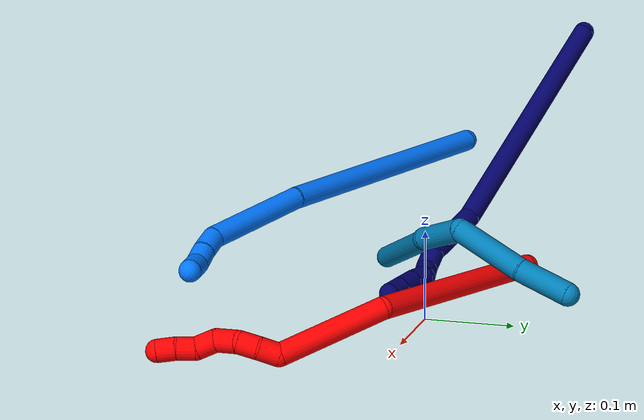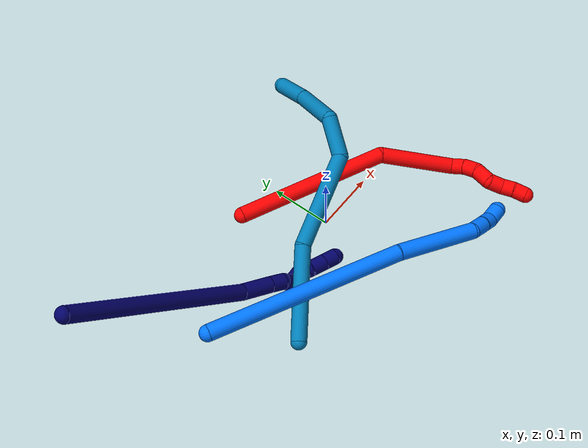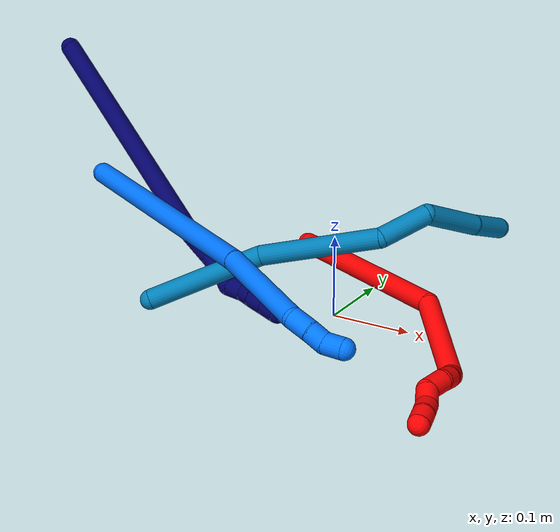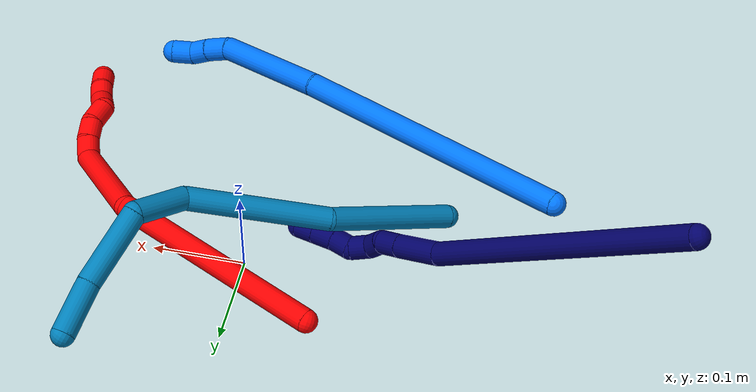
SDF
<sdf version="1.7">
 <world name="default">
  <model name="2">
   <static>0</static>
   <link name="2">
    <collision name="collision-cylinder-e_1_1_4">
     <pose>0.045699 -0.111108 0.02016 1.3913 0.38455 0.32225</pose>
     <geometry><cylinder><radius>0.0125</radius><length>0.243638</length></cylinder></geometry>
     <surface>
      <friction><ode><mu>1.16</mu><mu2>1.16</mu2><slip1>0</slip1><slip2>0</slip2></ode></friction>
      <contact><ode><kp>1e+06</kp><kd>1</kd><max_vel>0</max_vel><min_depth>0.001</min_depth></ode></contact>
     </surface>
    </collision>
    <visual name="visual-cylinder-e_1_1_4">
     <pose>0.045699 -0.111108 0.02016 1.3913 0.38455 0.32225</pose>
     <geometry><cylinder><radius>0.0125</radius><length>0.243638</length></cylinder></geometry>
     <material><ambient>1 0 0 1</ambient></material>
    </visual>
    <collision name="collision-cylinder-e_2_4_5">
     <pose>0.082321 -0.280806 0.055691 1.31424 -0.148756 -0.114852</pose>
     <geometry><cylinder><radius>0.0125</radius><length>0.122499</length></cylinder></geometry>
     <surface>
      <friction><ode><mu>1.16</mu><mu2>1.16</mu2><slip1>0</slip1><slip2>0</slip2></ode></friction>
      <contact><ode><kp>1e+06</kp><kd>1</kd><max_vel>0</max_vel><min_depth>0.001</min_depth></ode></contact>
     </surface>
    </collision>
    <visual name="visual-cylinder-e_2_4_5">
     <pose>0.082321 -0.280806 0.055691 1.31424 -0.148756 -0.114852</pose>
     <geometry><cylinder><radius>0.0125</radius><length>0.122499</length></cylinder></geometry>
     <material><ambient>1 0 0 1</ambient></material>
    </visual>
    <collision name="collision-cylinder-e_3_5_6">
     <pose>0.073512 -0.345645 0.080512 0.584186 0.023677 0.00712</pose>
     <geometry><cylinder><radius>0.0125</radius><length>0.022665</length></cylinder></geometry>
     <surface>
      <friction><ode><mu>1.16</mu><mu2>1.16</mu2><slip1>0</slip1><slip2>0</slip2></ode></friction>
      <contact><ode><kp>1e+06</kp><kd>1</kd><max_vel>0</max_vel><min_depth>0.001</min_depth></ode></contact>
     </surface>
    </collision>
    <visual name="visual-cylinder-e_3_5_6">
     <pose>0.073512 -0.345645 0.080512 0.584186 0.023677 0.00712</pose>
     <geometry><cylinder><radius>0.0125</radius><length>0.022665</length></cylinder></geometry>
     <material><ambient>1 0 0 1</ambient></material>
    </visual>
    <collision name="collision-cylinder-e_4_6_7">
     <pose>0.071655 -0.356879 0.099362 0.487676 -0.197099 -0.049185</pose>
     <geometry><cylinder><radius>0.0125</radius><length>0.021702</length></cylinder></geometry>
     <surface>
      <friction><ode><mu>1.16</mu><mu2>1.16</mu2><slip1>0</slip1><slip2>0</slip2></ode></friction>
      <contact><ode><kp>1e+06</kp><kd>1</kd><max_vel>0</max_vel><min_depth>0.001</min_depth></ode></contact>
     </surface>
    </collision>
    <visual name="visual-cylinder-e_4_6_7">
     <pose>0.071655 -0.356879 0.099362 0.487676 -0.197099 -0.049185</pose>
     <geometry><cylinder><radius>0.0125</radius><length>0.021702</length></cylinder></geometry>
     <material><ambient>1 0 0 1</ambient></material>
    </visual>
    <collision name="collision-cylinder-e_5_7_8">
     <pose>0.062147 -0.366966 0.118473 0.483702 -0.592476 -0.150299</pose>
     <geometry><cylinder><radius>0.0125</radius><length>0.026444</length></cylinder></geometry>
     <surface>
      <friction><ode><mu>1.16</mu><mu2>1.16</mu2><slip1>0</slip1><slip2>0</slip2></ode></friction>
      <contact><ode><kp>1e+06</kp><kd>1</kd><max_vel>0</max_vel><min_depth>0.001</min_depth></ode></contact>
     </surface>
    </collision>
    <visual name="visual-cylinder-e_5_7_8">
     <pose>0.062147 -0.366966 0.118473 0.483702 -0.592476 -0.150299</pose>
     <geometry><cylinder><radius>0.0125</radius><length>0.026444</length></cylinder></geometry>
     <material><ambient>1 0 0 1</ambient></material>
    </visual>
    <collision name="collision-cylinder-e_6_8_9">
     <pose>0.050661 -0.381965 0.132041 1.19913 -0.36855 -0.253428</pose>
     <geometry><cylinder><radius>0.0125</radius><length>0.022777</length></cylinder></geometry>
     <surface>
      <friction><ode><mu>1.16</mu><mu2>1.16</mu2><slip1>0</slip1><slip2>0</slip2></ode></friction>
      <contact><ode><kp>1e+06</kp><kd>1</kd><max_vel>0</max_vel><min_depth>0.001</min_depth></ode></contact>
     </surface>
    </collision>
    <visual name="visual-cylinder-e_6_8_9">
     <pose>0.050661 -0.381965 0.132041 1.19913 -0.36855 -0.253428</pose>
     <geometry><cylinder><radius>0.0125</radius><length>0.022777</length></cylinder></geometry>
     <material><ambient>1 0 0 1</ambient></material>
    </visual>
    <collision name="collision-cylinder-e_7_9_10">
     <pose>0.044453 -0.398971 0.142665 0.810038 -0.211349 -0.090886</pose>
     <geometry><cylinder><radius>0.0125</radius><length>0.020071</length></cylinder></geometry>
     <surface>
      <friction><ode><mu>1.16</mu><mu2>1.16</mu2><slip1>0</slip1><slip2>0</slip2></ode></friction>
      <contact><ode><kp>1e+06</kp><kd>1</kd><max_vel>0</max_vel><min_depth>0.001</min_depth></ode></contact>
     </surface>
    </collision>
    <visual name="visual-cylinder-e_7_9_10">
     <pose>0.044453 -0.398971 0.142665 0.810038 -0.211349 -0.090886</pose>
     <geometry><cylinder><radius>0.0125</radius><length>0.020071</length></cylinder></geometry>
     <material><ambient>1 0 0 1</ambient></material>
    </visual>
    <collision name="collision-cylinder-e_8_10_2">
     <pose>0.038594 -0.413293 0.155424 0.877543 -0.380634 -0.180322</pose>
     <geometry><cylinder><radius>0.0125</radius><length>0.020205</length></cylinder></geometry>
     <surface>
      <friction><ode><mu>1.16</mu><mu2>1.16</mu2><slip1>0</slip1><slip2>0</slip2></ode></friction>
      <contact><ode><kp>1e+06</kp><kd>1</kd><max_vel>0</max_vel><min_depth>0.001</min_depth></ode></contact>
     </surface>
    </collision>
    <visual name="visual-cylinder-e_8_10_2">
     <pose>0.038594 -0.413293 0.155424 0.877543 -0.380634 -0.180322</pose>
     <geometry><cylinder><radius>0.0125</radius><length>0.020205</length></cylinder></geometry>
     <material><ambient>1 0 0 1</ambient></material>
    </visual>
    <collision name="collision-sphere-2">
     <pose>0.034841 -0.420507 0.161418 0 -0 0</pose>
     <geometry><sphere><radius>0.0125</radius></sphere></geometry>
     <surface>
      <friction><ode><mu>1.16</mu><mu2>1.16</mu2><slip1>0</slip1><slip2>0</slip2></ode></friction>
      <contact><ode><kp>1e+06</kp><kd>1</kd><max_vel>0</max_vel><min_depth>0.001</min_depth></ode></contact>
     </surface>
    </collision>
    <visual name="visual-sphere-2">
     <pose>0.034841 -0.420507 0.161418 0 -0 0</pose>
     <geometry><sphere><radius>0.0125</radius></sphere></geometry>
     <material><ambient>1 0 0 1</ambient></material>
    </visual>
    <collision name="collision-sphere-10">
     <pose>0.042347 -0.406078 0.14943 0 -0 0</pose>
     <geometry><sphere><radius>0.0125</radius></sphere></geometry>
     <surface>
      <friction><ode><mu>1.16</mu><mu2>1.16</mu2><slip1>0</slip1><slip2>0</slip2></ode></friction>
      <contact><ode><kp>1e+06</kp><kd>1</kd><max_vel>0</max_vel><min_depth>0.001</min_depth></ode></contact>
     </surface>
    </collision>
    <visual name="visual-sphere-10">
     <pose>0.042347 -0.406078 0.14943 0 -0 0</pose>
     <geometry><sphere><radius>0.0125</radius></sphere></geometry>
     <material><ambient>1 0 0 1</ambient></material>
    </visual>
    <collision name="collision-sphere-9">
     <pose>0.046558 -0.391864 0.135899 0 -0 0</pose>
     <geometry><sphere><radius>0.0125</radius></sphere></geometry>
     <surface>
      <friction><ode><mu>1.16</mu><mu2>1.16</mu2><slip1>0</slip1><slip2>0</slip2></ode></friction>
      <contact><ode><kp>1e+06</kp><kd>1</kd><max_vel>0</max_vel><min_depth>0.001</min_depth></ode></contact>
     </surface>
    </collision>
    <visual name="visual-sphere-9">
     <pose>0.046558 -0.391864 0.135899 0 -0 0</pose>
     <geometry><sphere><radius>0.0125</radius></sphere></geometry>
     <material><ambient>1 0 0 1</ambient></material>
    </visual>
    <collision name="collision-sphere-4">
     <pose>0.091399 -0.222216 0.040321 0 -0 0</pose>
     <geometry><sphere><radius>0.0125</radius></sphere></geometry>
     <surface>
      <friction><ode><mu>1.16</mu><mu2>1.16</mu2><slip1>0</slip1><slip2>0</slip2></ode></friction>
      <contact><ode><kp>1e+06</kp><kd>1</kd><max_vel>0</max_vel><min_depth>0.001</min_depth></ode></contact>
     </surface>
    </collision>
    <visual name="visual-sphere-4">
     <pose>0.091399 -0.222216 0.040321 0 -0 0</pose>
     <geometry><sphere><radius>0.0125</radius></sphere></geometry>
     <material><ambient>1 0 0 1</ambient></material>
    </visual>
    <collision name="collision-sphere-1">
     <geometry><sphere><radius>0.0125</radius></sphere></geometry>
     <surface>
      <friction><ode><mu>1.16</mu><mu2>1.16</mu2><slip1>0</slip1><slip2>0</slip2></ode></friction>
      <contact><ode><kp>1e+06</kp><kd>1</kd><max_vel>0</max_vel><min_depth>0.001</min_depth></ode></contact>
     </surface>
    </collision>
    <visual name="visual-sphere-1">
     <geometry><sphere><radius>0.0125</radius></sphere></geometry>
     <material><ambient>1 0 0 1</ambient></material>
    </visual>
    <collision name="collision-sphere-8">
     <pose>0.054764 -0.372067 0.128183 0 -0 0</pose>
     <geometry><sphere><radius>0.0125</radius></sphere></geometry>
     <surface>
      <friction><ode><mu>1.16</mu><mu2>1.16</mu2><slip1>0</slip1><slip2>0</slip2></ode></friction>
      <contact><ode><kp>1e+06</kp><kd>1</kd><max_vel>0</max_vel><min_depth>0.001</min_depth></ode></contact>
     </surface>
    </collision>
    <visual name="visual-sphere-8">
     <pose>0.054764 -0.372067 0.128183 0 -0 0</pose>
     <geometry><sphere><radius>0.0125</radius></sphere></geometry>
     <material><ambient>1 0 0 1</ambient></material>
    </visual>
    <collision name="collision-sphere-5">
     <pose>0.073243 -0.339397 0.071061 0 -0 0</pose>
     <geometry><sphere><radius>0.0125</radius></sphere></geometry>
     <surface>
      <friction><ode><mu>1.16</mu><mu2>1.16</mu2><slip1>0</slip1><slip2>0</slip2></ode></friction>
      <contact><ode><kp>1e+06</kp><kd>1</kd><max_vel>0</max_vel><min_depth>0.001</min_depth></ode></contact>
     </surface>
    </collision>
    <visual name="visual-sphere-5">
     <pose>0.073243 -0.339397 0.071061 0 -0 0</pose>
     <geometry><sphere><radius>0.0125</radius></sphere></geometry>
     <material><ambient>1 0 0 1</ambient></material>
    </visual>
    <collision name="collision-sphere-6">
     <pose>0.07378 -0.351893 0.089962 0 -0 0</pose>
     <geometry><sphere><radius>0.0125</radius></sphere></geometry>
     <surface>
      <friction><ode><mu>1.16</mu><mu2>1.16</mu2><slip1>0</slip1><slip2>0</slip2></ode></friction>
      <contact><ode><kp>1e+06</kp><kd>1</kd><max_vel>0</max_vel><min_depth>0.001</min_depth></ode></contact>
     </surface>
    </collision>
    <visual name="visual-sphere-6">
     <pose>0.07378 -0.351893 0.089962 0 -0 0</pose>
     <geometry><sphere><radius>0.0125</radius></sphere></geometry>
     <material><ambient>1 0 0 1</ambient></material>
    </visual>
    <collision name="collision-sphere-7">
     <pose>0.06953 -0.361865 0.108763 0 -0 0</pose>
     <geometry><sphere><radius>0.0125</radius></sphere></geometry>
     <surface>
      <friction><ode><mu>1.16</mu><mu2>1.16</mu2><slip1>0</slip1><slip2>0</slip2></ode></friction>
      <contact><ode><kp>1e+06</kp><kd>1</kd><max_vel>0</max_vel><min_depth>0.001</min_depth></ode></contact>
     </surface>
    </collision>
    <visual name="visual-sphere-7">
     <pose>0.06953 -0.361865 0.108763 0 -0 0</pose>
     <geometry><sphere><radius>0.0125</radius></sphere></geometry>
     <material><ambient>1 0 0 1</ambient></material>
    </visual>
    <inertial>
     <pose>0.057818 -0.22362 0.055718 0 -0 0</pose>
     <mass>0.5</mass>
     <inertia>
      <ixx>0.001574</ixx>
      <ixy>0</ixy>
      <ixz>0</ixz>
      <iyy>0.000703</iyy>
      <iyz>0</iyz>
      <izz>0.000849</izz>
     </inertia>
    </inertial>
   </link>
   <pose>-0.090503 0.093541 0.044495 0.535367 -0.742898 0.61382</pose>
  </model>
  <model name="7">
   <static>0</static>
   <link name="7">
    <collision name="collision-cylinder-e_1_1_4">
     <pose>0.009944 -0.013615 -0.157216 3.0552 0.062929 1.25886</pose>
     <geometry><cylinder><radius>0.0125</radius><length>0.316236</length></cylinder></geometry>
     <surface>
      <friction><ode><mu>1.16</mu><mu2>1.16</mu2><slip1>0</slip1><slip2>0</slip2></ode></friction>
      <contact><ode><kp>1e+06</kp><kd>1</kd><max_vel>0</max_vel><min_depth>0.001</min_depth></ode></contact>
     </surface>
    </collision>
    <visual name="visual-cylinder-e_1_1_4">
     <pose>0.009944 -0.013615 -0.157216 3.0552 0.062929 1.25886</pose>
     <geometry><cylinder><radius>0.0125</radius><length>0.316236</length></cylinder></geometry>
     <material><ambient>0.003922 0 0.403922 1</ambient></material>
    </visual>
    <collision name="collision-cylinder-e_2_4_5">
     <pose>0.027302 -0.030666 -0.337949 2.99652 0.302434 2.25169</pose>
     <geometry><cylinder><radius>0.0125</radius><length>0.04979</length></cylinder></geometry>
     <surface>
      <friction><ode><mu>1.16</mu><mu2>1.16</mu2><slip1>0</slip1><slip2>0</slip2></ode></friction>
      <contact><ode><kp>1e+06</kp><kd>1</kd><max_vel>0</max_vel><min_depth>0.001</min_depth></ode></contact>
     </surface>
    </collision>
    <visual name="visual-cylinder-e_2_4_5">
     <pose>0.027302 -0.030666 -0.337949 2.99652 0.302434 2.25169</pose>
     <geometry><cylinder><radius>0.0125</radius><length>0.04979</length></cylinder></geometry>
     <material><ambient>0.003922 0 0.403922 1</ambient></material>
    </visual>
    <collision name="collision-cylinder-e_3_5_6">
     <pose>0.038352 -0.036192 -0.372983 2.96209 0.301043 2.07055</pose>
     <geometry><cylinder><radius>0.0125</radius><length>0.024516</length></cylinder></geometry>
     <surface>
      <friction><ode><mu>1.16</mu><mu2>1.16</mu2><slip1>0</slip1><slip2>0</slip2></ode></friction>
      <contact><ode><kp>1e+06</kp><kd>1</kd><max_vel>0</max_vel><min_depth>0.001</min_depth></ode></contact>
     </surface>
    </collision>
    <visual name="visual-cylinder-e_3_5_6">
     <pose>0.038352 -0.036192 -0.372983 2.96209 0.301043 2.07055</pose>
     <geometry><cylinder><radius>0.0125</radius><length>0.024516</length></cylinder></geometry>
     <material><ambient>0.003922 0 0.403922 1</ambient></material>
    </visual>
    <collision name="collision-cylinder-e_4_6_7">
     <pose>0.040164 -0.039127 -0.395177 3.06265 -0.168531 -2.26693</pose>
     <geometry><cylinder><radius>0.0125</radius><length>0.021726</length></cylinder></geometry>
     <surface>
      <friction><ode><mu>1.16</mu><mu2>1.16</mu2><slip1>0</slip1><slip2>0</slip2></ode></friction>
      <contact><ode><kp>1e+06</kp><kd>1</kd><max_vel>0</max_vel><min_depth>0.001</min_depth></ode></contact>
     </surface>
    </collision>
    <visual name="visual-cylinder-e_4_6_7">
     <pose>0.040164 -0.039127 -0.395177 3.06265 -0.168531 -2.26693</pose>
     <geometry><cylinder><radius>0.0125</radius><length>0.021726</length></cylinder></geometry>
     <material><ambient>0.003922 0 0.403922 1</ambient></material>
    </visual>
    <collision name="collision-cylinder-e_5_7_8">
     <pose>0.042891 -0.036095 -0.414868 -2.73549 0.434074 -1.63935</pose>
     <geometry><cylinder><radius>0.0125</radius><length>0.021633</length></cylinder></geometry>
     <surface>
      <friction><ode><mu>1.16</mu><mu2>1.16</mu2><slip1>0</slip1><slip2>0</slip2></ode></friction>
      <contact><ode><kp>1e+06</kp><kd>1</kd><max_vel>0</max_vel><min_depth>0.001</min_depth></ode></contact>
     </surface>
    </collision>
    <visual name="visual-cylinder-e_5_7_8">
     <pose>0.042891 -0.036095 -0.414868 -2.73549 0.434074 -1.63935</pose>
     <geometry><cylinder><radius>0.0125</radius><length>0.021633</length></cylinder></geometry>
     <material><ambient>0.003922 0 0.403922 1</ambient></material>
    </visual>
    <collision name="collision-cylinder-e_6_8_9">
     <pose>0.053499 -0.034616 -0.432107 2.85787 0.61557 2.29708</pose>
     <geometry><cylinder><radius>0.0125</radius><length>0.020983</length></cylinder></geometry>
     <surface>
      <friction><ode><mu>1.16</mu><mu2>1.16</mu2><slip1>0</slip1><slip2>0</slip2></ode></friction>
      <contact><ode><kp>1e+06</kp><kd>1</kd><max_vel>0</max_vel><min_depth>0.001</min_depth></ode></contact>
     </surface>
    </collision>
    <visual name="visual-cylinder-e_6_8_9">
     <pose>0.053499 -0.034616 -0.432107 2.85787 0.61557 2.29708</pose>
     <geometry><cylinder><radius>0.0125</radius><length>0.020983</length></cylinder></geometry>
     <material><ambient>0.003922 0 0.403922 1</ambient></material>
    </visual>
    <collision name="collision-cylinder-e_7_9_10">
     <pose>0.066141 -0.038222 -0.450336 3.02144 0.57869 2.74288</pose>
     <geometry><cylinder><radius>0.0125</radius><length>0.024078</length></cylinder></geometry>
     <surface>
      <friction><ode><mu>1.16</mu><mu2>1.16</mu2><slip1>0</slip1><slip2>0</slip2></ode></friction>
      <contact><ode><kp>1e+06</kp><kd>1</kd><max_vel>0</max_vel><min_depth>0.001</min_depth></ode></contact>
     </surface>
    </collision>
    <visual name="visual-cylinder-e_7_9_10">
     <pose>0.066141 -0.038222 -0.450336 3.02144 0.57869 2.74288</pose>
     <geometry><cylinder><radius>0.0125</radius><length>0.024078</length></cylinder></geometry>
     <material><ambient>0.003922 0 0.403922 1</ambient></material>
    </visual>
    <collision name="collision-cylinder-e_8_10_2">
     <pose>0.078443 -0.040525 -0.469103 3.01717 0.574685 2.72611</pose>
     <geometry><cylinder><radius>0.0125</radius><length>0.021038</length></cylinder></geometry>
     <surface>
      <friction><ode><mu>1.16</mu><mu2>1.16</mu2><slip1>0</slip1><slip2>0</slip2></ode></friction>
      <contact><ode><kp>1e+06</kp><kd>1</kd><max_vel>0</max_vel><min_depth>0.001</min_depth></ode></contact>
     </surface>
    </collision>
    <visual name="visual-cylinder-e_8_10_2">
     <pose>0.078443 -0.040525 -0.469103 3.01717 0.574685 2.72611</pose>
     <geometry><cylinder><radius>0.0125</radius><length>0.021038</length></cylinder></geometry>
     <material><ambient>0.003922 0 0.403922 1</ambient></material>
    </visual>
    <collision name="collision-sphere-2">
     <pose>0.084161 -0.041621 -0.477864 0 -0 0</pose>
     <geometry><sphere><radius>0.0125</radius></sphere></geometry>
     <surface>
      <friction><ode><mu>1.16</mu><mu2>1.16</mu2><slip1>0</slip1><slip2>0</slip2></ode></friction>
      <contact><ode><kp>1e+06</kp><kd>1</kd><max_vel>0</max_vel><min_depth>0.001</min_depth></ode></contact>
     </surface>
    </collision>
    <visual name="visual-sphere-2">
     <pose>0.084161 -0.041621 -0.477864 0 -0 0</pose>
     <geometry><sphere><radius>0.0125</radius></sphere></geometry>
     <material><ambient>0.003922 0 0.403922 1</ambient></material>
    </visual>
    <collision name="collision-sphere-10">
     <pose>0.072725 -0.03943 -0.460342 0 -0 0</pose>
     <geometry><sphere><radius>0.0125</radius></sphere></geometry>
     <surface>
      <friction><ode><mu>1.16</mu><mu2>1.16</mu2><slip1>0</slip1><slip2>0</slip2></ode></friction>
      <contact><ode><kp>1e+06</kp><kd>1</kd><max_vel>0</max_vel><min_depth>0.001</min_depth></ode></contact>
     </surface>
    </collision>
    <visual name="visual-sphere-10">
     <pose>0.072725 -0.03943 -0.460342 0 -0 0</pose>
     <geometry><sphere><radius>0.0125</radius></sphere></geometry>
     <material><ambient>0.003922 0 0.403922 1</ambient></material>
    </visual>
    <collision name="collision-sphere-9">
     <pose>0.059557 -0.037014 -0.44033 0 -0 0</pose>
     <geometry><sphere><radius>0.0125</radius></sphere></geometry>
     <surface>
      <friction><ode><mu>1.16</mu><mu2>1.16</mu2><slip1>0</slip1><slip2>0</slip2></ode></friction>
      <contact><ode><kp>1e+06</kp><kd>1</kd><max_vel>0</max_vel><min_depth>0.001</min_depth></ode></contact>
     </surface>
    </collision>
    <visual name="visual-sphere-9">
     <pose>0.059557 -0.037014 -0.44033 0 -0 0</pose>
     <geometry><sphere><radius>0.0125</radius></sphere></geometry>
     <material><ambient>0.003922 0 0.403922 1</ambient></material>
    </visual>
    <collision name="collision-sphere-4">
     <pose>0.019887 -0.027231 -0.314433 0 -0 0</pose>
     <geometry><sphere><radius>0.0125</radius></sphere></geometry>
     <surface>
      <friction><ode><mu>1.16</mu><mu2>1.16</mu2><slip1>0</slip1><slip2>0</slip2></ode></friction>
      <contact><ode><kp>1e+06</kp><kd>1</kd><max_vel>0</max_vel><min_depth>0.001</min_depth></ode></contact>
     </surface>
    </collision>
    <visual name="visual-sphere-4">
     <pose>0.019887 -0.027231 -0.314433 0 -0 0</pose>
     <geometry><sphere><radius>0.0125</radius></sphere></geometry>
     <material><ambient>0.003922 0 0.403922 1</ambient></material>
    </visual>
    <collision name="collision-sphere-1">
     <geometry><sphere><radius>0.0125</radius></sphere></geometry>
     <surface>
      <friction><ode><mu>1.16</mu><mu2>1.16</mu2><slip1>0</slip1><slip2>0</slip2></ode></friction>
      <contact><ode><kp>1e+06</kp><kd>1</kd><max_vel>0</max_vel><min_depth>0.001</min_depth></ode></contact>
     </surface>
    </collision>
    <visual name="visual-sphere-1">
     <geometry><sphere><radius>0.0125</radius></sphere></geometry>
     <material><ambient>0.003922 0 0.403922 1</ambient></material>
    </visual>
    <collision name="collision-sphere-8">
     <pose>0.047441 -0.032218 -0.423883 0 -0 0</pose>
     <geometry><sphere><radius>0.0125</radius></sphere></geometry>
     <surface>
      <friction><ode><mu>1.16</mu><mu2>1.16</mu2><slip1>0</slip1><slip2>0</slip2></ode></friction>
      <contact><ode><kp>1e+06</kp><kd>1</kd><max_vel>0</max_vel><min_depth>0.001</min_depth></ode></contact>
     </surface>
    </collision>
    <visual name="visual-sphere-8">
     <pose>0.047441 -0.032218 -0.423883 0 -0 0</pose>
     <geometry><sphere><radius>0.0125</radius></sphere></geometry>
     <material><ambient>0.003922 0 0.403922 1</ambient></material>
    </visual>
    <collision name="collision-sphere-5">
     <pose>0.034717 -0.034102 -0.361464 0 -0 0</pose>
     <geometry><sphere><radius>0.0125</radius></sphere></geometry>
     <surface>
      <friction><ode><mu>1.16</mu><mu2>1.16</mu2><slip1>0</slip1><slip2>0</slip2></ode></friction>
      <contact><ode><kp>1e+06</kp><kd>1</kd><max_vel>0</max_vel><min_depth>0.001</min_depth></ode></contact>
     </surface>
    </collision>
    <visual name="visual-sphere-5">
     <pose>0.034717 -0.034102 -0.361464 0 -0 0</pose>
     <geometry><sphere><radius>0.0125</radius></sphere></geometry>
     <material><ambient>0.003922 0 0.403922 1</ambient></material>
    </visual>
    <collision name="collision-sphere-6">
     <pose>0.041987 -0.038282 -0.384501 0 -0 0</pose>
     <geometry><sphere><radius>0.0125</radius></sphere></geometry>
     <surface>
      <friction><ode><mu>1.16</mu><mu2>1.16</mu2><slip1>0</slip1><slip2>0</slip2></ode></friction>
      <contact><ode><kp>1e+06</kp><kd>1</kd><max_vel>0</max_vel><min_depth>0.001</min_depth></ode></contact>
     </surface>
    </collision>
    <visual name="visual-sphere-6">
     <pose>0.041987 -0.038282 -0.384501 0 -0 0</pose>
     <geometry><sphere><radius>0.0125</radius></sphere></geometry>
     <material><ambient>0.003922 0 0.403922 1</ambient></material>
    </visual>
    <collision name="collision-sphere-7">
     <pose>0.038342 -0.039971 -0.405853 0 -0 0</pose>
     <geometry><sphere><radius>0.0125</radius></sphere></geometry>
     <surface>
      <friction><ode><mu>1.16</mu><mu2>1.16</mu2><slip1>0</slip1><slip2>0</slip2></ode></friction>
      <contact><ode><kp>1e+06</kp><kd>1</kd><max_vel>0</max_vel><min_depth>0.001</min_depth></ode></contact>
     </surface>
    </collision>
    <visual name="visual-sphere-7">
     <pose>0.038342 -0.039971 -0.405853 0 -0 0</pose>
     <geometry><sphere><radius>0.0125</radius></sphere></geometry>
     <material><ambient>0.003922 0 0.403922 1</ambient></material>
    </visual>
    <inertial>
     <pose>0.02322 -0.0217 -0.246055 0 -0 0</pose>
     <mass>0.5</mass>
     <inertia><ixx>0.00333</ixx><ixy>0</ixy><ixz>0</ixz><iyy>0.001741</iyy><iyz>0</iyz><izz>1.9e-05</izz></inertia>
    </inertial>
   </link>
   <pose>-0.448455 0.082203 0.251744 -0.013819 -0.878323 -0.212634</pose>
  </model>
  <model name="9">
   <static>0</static>
   <link name="9">
    <collision name="collision-cylinder-e_1_1_4">
     <pose>0.027861 0.039412 0.05389 -0.631457 0.395341 -0.130663</pose>
     <geometry><cylinder><radius>0.0125</radius><length>0.144688</length></cylinder></geometry>
     <surface>
      <friction><ode><mu>1.16</mu><mu2>1.16</mu2><slip1>0</slip1><slip2>0</slip2></ode></friction>
      <contact><ode><kp>1e+06</kp><kd>1</kd><max_vel>0</max_vel><min_depth>0.001</min_depth></ode></contact>
     </surface>
    </collision>
    <visual name="visual-cylinder-e_1_1_4">
     <pose>0.027861 0.039412 0.05389 -0.631457 0.395341 -0.130663</pose>
     <geometry><cylinder><radius>0.0125</radius><length>0.144688</length></cylinder></geometry>
     <material><ambient>0 0.490196 0.709804 1</ambient></material>
    </visual>
    <collision name="collision-cylinder-e_2_4_5">
     <pose>0.082447 0.096447 0.177068 -0.249061 0.357711 -0.045253</pose>
     <geometry><cylinder><radius>0.0125</radius><length>0.152653</length></cylinder></geometry>
     <surface>
      <friction><ode><mu>1.16</mu><mu2>1.16</mu2><slip1>0</slip1><slip2>0</slip2></ode></friction>
      <contact><ode><kp>1e+06</kp><kd>1</kd><max_vel>0</max_vel><min_depth>0.001</min_depth></ode></contact>
     </surface>
    </collision>
    <visual name="visual-cylinder-e_2_4_5">
     <pose>0.082447 0.096447 0.177068 -0.249061 0.357711 -0.045253</pose>
     <geometry><cylinder><radius>0.0125</radius><length>0.152653</length></cylinder></geometry>
     <material><ambient>0 0.490196 0.709804 1</ambient></material>
    </visual>
    <collision name="collision-cylinder-e_3_5_6">
     <pose>0.124169 0.136822 0.262509 -0.953423 0.493214 -0.258557</pose>
     <geometry><cylinder><radius>0.0125</radius><length>0.063354</length></cylinder></geometry>
     <surface>
      <friction><ode><mu>1.16</mu><mu2>1.16</mu2><slip1>0</slip1><slip2>0</slip2></ode></friction>
      <contact><ode><kp>1e+06</kp><kd>1</kd><max_vel>0</max_vel><min_depth>0.001</min_depth></ode></contact>
     </surface>
    </collision>
    <visual name="visual-cylinder-e_3_5_6">
     <pose>0.124169 0.136822 0.262509 -0.953423 0.493214 -0.258557</pose>
     <geometry><cylinder><radius>0.0125</radius><length>0.063354</length></cylinder></geometry>
     <material><ambient>0 0.490196 0.709804 1</ambient></material>
    </visual>
    <collision name="collision-cylinder-e_4_6_7">
     <pose>0.177647 0.174948 0.2795 -1.51632 1.19015 -1.14008</pose>
     <geometry><cylinder><radius>0.0125</radius><length>0.082893</length></cylinder></geometry>
     <surface>
      <friction><ode><mu>1.16</mu><mu2>1.16</mu2><slip1>0</slip1><slip2>0</slip2></ode></friction>
      <contact><ode><kp>1e+06</kp><kd>1</kd><max_vel>0</max_vel><min_depth>0.001</min_depth></ode></contact>
     </surface>
    </collision>
    <visual name="visual-cylinder-e_4_6_7">
     <pose>0.177647 0.174948 0.2795 -1.51632 1.19015 -1.14008</pose>
     <geometry><cylinder><radius>0.0125</radius><length>0.082893</length></cylinder></geometry>
     <material><ambient>0 0.490196 0.709804 1</ambient></material>
    </visual>
    <collision name="collision-cylinder-e_5_7_2">
     <pose>0.241069 0.203178 0.277472 -1.79019 1.085 -1.28963</pose>
     <geometry><cylinder><radius>0.0125</radius><length>0.056412</length></cylinder></geometry>
     <surface>
      <friction><ode><mu>1.16</mu><mu2>1.16</mu2><slip1>0</slip1><slip2>0</slip2></ode></friction>
      <contact><ode><kp>1e+06</kp><kd>1</kd><max_vel>0</max_vel><min_depth>0.001</min_depth></ode></contact>
     </surface>
    </collision>
    <visual name="visual-cylinder-e_5_7_2">
     <pose>0.241069 0.203178 0.277472 -1.79019 1.085 -1.28963</pose>
     <geometry><cylinder><radius>0.0125</radius><length>0.056412</length></cylinder></geometry>
     <material><ambient>0 0.490196 0.709804 1</ambient></material>
    </visual>
    <collision name="collision-sphere-2">
     <pose>0.266012 0.216032 0.274606 0 -0 0</pose>
     <geometry><sphere><radius>0.0125</radius></sphere></geometry>
     <surface>
      <friction><ode><mu>1.16</mu><mu2>1.16</mu2><slip1>0</slip1><slip2>0</slip2></ode></friction>
      <contact><ode><kp>1e+06</kp><kd>1</kd><max_vel>0</max_vel><min_depth>0.001</min_depth></ode></contact>
     </surface>
    </collision>
    <visual name="visual-sphere-2">
     <pose>0.266012 0.216032 0.274606 0 -0 0</pose>
     <geometry><sphere><radius>0.0125</radius></sphere></geometry>
     <material><ambient>0 0.490196 0.709804 1</ambient></material>
    </visual>
    <collision name="collision-sphere-7">
     <pose>0.216126 0.190324 0.280338 0 -0 0</pose>
     <geometry><sphere><radius>0.0125</radius></sphere></geometry>
     <surface>
      <friction><ode><mu>1.16</mu><mu2>1.16</mu2><slip1>0</slip1><slip2>0</slip2></ode></friction>
      <contact><ode><kp>1e+06</kp><kd>1</kd><max_vel>0</max_vel><min_depth>0.001</min_depth></ode></contact>
     </surface>
    </collision>
    <visual name="visual-sphere-7">
     <pose>0.216126 0.190324 0.280338 0 -0 0</pose>
     <geometry><sphere><radius>0.0125</radius></sphere></geometry>
     <material><ambient>0 0.490196 0.709804 1</ambient></material>
    </visual>
    <collision name="collision-sphere-6">
     <pose>0.139167 0.159573 0.278662 0 -0 0</pose>
     <geometry><sphere><radius>0.0125</radius></sphere></geometry>
     <surface>
      <friction><ode><mu>1.16</mu><mu2>1.16</mu2><slip1>0</slip1><slip2>0</slip2></ode></friction>
      <contact><ode><kp>1e+06</kp><kd>1</kd><max_vel>0</max_vel><min_depth>0.001</min_depth></ode></contact>
     </surface>
    </collision>
    <visual name="visual-sphere-6">
     <pose>0.139167 0.159573 0.278662 0 -0 0</pose>
     <geometry><sphere><radius>0.0125</radius></sphere></geometry>
     <material><ambient>0 0.490196 0.709804 1</ambient></material>
    </visual>
    <collision name="collision-sphere-5">
     <pose>0.109171 0.11407 0.246357 0 -0 0</pose>
     <geometry><sphere><radius>0.0125</radius></sphere></geometry>
     <surface>
      <friction><ode><mu>1.16</mu><mu2>1.16</mu2><slip1>0</slip1><slip2>0</slip2></ode></friction>
      <contact><ode><kp>1e+06</kp><kd>1</kd><max_vel>0</max_vel><min_depth>0.001</min_depth></ode></contact>
     </surface>
    </collision>
    <visual name="visual-sphere-5">
     <pose>0.109171 0.11407 0.246357 0 -0 0</pose>
     <geometry><sphere><radius>0.0125</radius></sphere></geometry>
     <material><ambient>0 0.490196 0.709804 1</ambient></material>
    </visual>
    <collision name="collision-sphere-1">
     <geometry><sphere><radius>0.0125</radius></sphere></geometry>
     <surface>
      <friction><ode><mu>1.16</mu><mu2>1.16</mu2><slip1>0</slip1><slip2>0</slip2></ode></friction>
      <contact><ode><kp>1e+06</kp><kd>1</kd><max_vel>0</max_vel><min_depth>0.001</min_depth></ode></contact>
     </surface>
    </collision>
    <visual name="visual-sphere-1">
     <geometry><sphere><radius>0.0125</radius></sphere></geometry>
     <material><ambient>0 0.490196 0.709804 1</ambient></material>
    </visual>
    <collision name="collision-sphere-4">
     <pose>0.055723 0.078824 0.107779 0 -0 0</pose>
     <geometry><sphere><radius>0.0125</radius></sphere></geometry>
     <surface>
      <friction><ode><mu>1.16</mu><mu2>1.16</mu2><slip1>0</slip1><slip2>0</slip2></ode></friction>
      <contact><ode><kp>1e+06</kp><kd>1</kd><max_vel>0</max_vel><min_depth>0.001</min_depth></ode></contact>
     </surface>
    </collision>
    <visual name="visual-sphere-4">
     <pose>0.055723 0.078824 0.107779 0 -0 0</pose>
     <geometry><sphere><radius>0.0125</radius></sphere></geometry>
     <material><ambient>0 0.490196 0.709804 1</ambient></material>
    </visual>
    <inertial>
     <pose>0.105617 0.110115 0.180559 0 -0 0</pose>
     <mass>0.5</mass>
     <inertia>
      <ixx>0.000496</ixx>
      <ixy>0</ixy>
      <ixz>0</ixz>
      <iyy>0.000524</iyy>
      <iyz>0</iyz>
      <izz>-0.000511</izz>
     </inertia>
    </inertial>
   </link>
   <pose>-0.198528 -0.100621 0.01271 1.04423 0.728373 1.02075</pose>
  </model>
  <model name="14">
   <static>0</static>
   <link name="14">
    <collision name="collision-cylinder-e_1_1_4">
     <pose>0.143789 -0.034443 -0.034743 2.36053 1.24284 2.09805</pose>
     <geometry><cylinder><radius>0.0125</radius><length>0.303767</length></cylinder></geometry>
     <surface>
      <friction><ode><mu>1.16</mu><mu2>1.16</mu2><slip1>0</slip1><slip2>0</slip2></ode></friction>
      <contact><ode><kp>1e+06</kp><kd>1</kd><max_vel>0</max_vel><min_depth>0.001</min_depth></ode></contact>
     </surface>
    </collision>
    <visual name="visual-cylinder-e_1_1_4">
     <pose>0.143789 -0.034443 -0.034743 2.36053 1.24284 2.09805</pose>
     <geometry><cylinder><radius>0.0125</radius><length>0.303767</length></cylinder></geometry>
     <material><ambient>0 0.462745 1 1</ambient></material>
    </visual>
    <collision name="collision-cylinder-e_2_4_5">
     <pose>0.345619 -0.080501 -0.091686 2.65956 1.1633 2.42613</pose>
     <geometry><cylinder><radius>0.0125</radius><length>0.126437</length></cylinder></geometry>
     <surface>
      <friction><ode><mu>1.16</mu><mu2>1.16</mu2><slip1>0</slip1><slip2>0</slip2></ode></friction>
      <contact><ode><kp>1e+06</kp><kd>1</kd><max_vel>0</max_vel><min_depth>0.001</min_depth></ode></contact>
     </surface>
    </collision>
    <visual name="visual-cylinder-e_2_4_5">
     <pose>0.345619 -0.080501 -0.091686 2.65956 1.1633 2.42613</pose>
     <geometry><cylinder><radius>0.0125</radius><length>0.126437</length></cylinder></geometry>
     <material><ambient>0 0.462745 1 1</ambient></material>
    </visual>
    <collision name="collision-cylinder-e_3_5_6">
     <pose>0.415861 -0.089376 -0.117537 -2.49802 1.21275 -2.24544</pose>
     <geometry><cylinder><radius>0.0125</radius><length>0.026053</length></cylinder></geometry>
     <surface>
      <friction><ode><mu>1.16</mu><mu2>1.16</mu2><slip1>0</slip1><slip2>0</slip2></ode></friction>
      <contact><ode><kp>1e+06</kp><kd>1</kd><max_vel>0</max_vel><min_depth>0.001</min_depth></ode></contact>
     </surface>
    </collision>
    <visual name="visual-cylinder-e_3_5_6">
     <pose>0.415861 -0.089376 -0.117537 -2.49802 1.21275 -2.24544</pose>
     <geometry><cylinder><radius>0.0125</radius><length>0.026053</length></cylinder></geometry>
     <material><ambient>0 0.462745 1 1</ambient></material>
    </visual>
    <collision name="collision-cylinder-e_4_6_7">
     <pose>0.437329 -0.083445 -0.124483 -2.37189 1.11123 -1.98547</pose>
     <geometry><cylinder><radius>0.0125</radius><length>0.020681</length></cylinder></geometry>
     <surface>
      <friction><ode><mu>1.16</mu><mu2>1.16</mu2><slip1>0</slip1><slip2>0</slip2></ode></friction>
      <contact><ode><kp>1e+06</kp><kd>1</kd><max_vel>0</max_vel><min_depth>0.001</min_depth></ode></contact>
     </surface>
    </collision>
    <visual name="visual-cylinder-e_4_6_7">
     <pose>0.437329 -0.083445 -0.124483 -2.37189 1.11123 -1.98547</pose>
     <geometry><cylinder><radius>0.0125</radius><length>0.020681</length></cylinder></geometry>
     <material><ambient>0 0.462745 1 1</ambient></material>
    </visual>
    <collision name="collision-cylinder-e_5_7_2">
     <pose>0.457983 -0.07851 -0.127252 -1.27815 1.41231 -1.12976</pose>
     <geometry><cylinder><radius>0.0125</radius><length>0.023063</length></cylinder></geometry>
     <surface>
      <friction><ode><mu>1.16</mu><mu2>1.16</mu2><slip1>0</slip1><slip2>0</slip2></ode></friction>
      <contact><ode><kp>1e+06</kp><kd>1</kd><max_vel>0</max_vel><min_depth>0.001</min_depth></ode></contact>
     </surface>
    </collision>
    <visual name="visual-cylinder-e_5_7_2">
     <pose>0.457983 -0.07851 -0.127252 -1.27815 1.41231 -1.12976</pose>
     <geometry><cylinder><radius>0.0125</radius><length>0.023063</length></cylinder></geometry>
     <material><ambient>0 0.462745 1 1</ambient></material>
    </visual>
    <collision name="collision-sphere-2">
     <pose>0.46937 -0.076768 -0.126727 0 -0 0</pose>
     <geometry><sphere><radius>0.0125</radius></sphere></geometry>
     <surface>
      <friction><ode><mu>1.16</mu><mu2>1.16</mu2><slip1>0</slip1><slip2>0</slip2></ode></friction>
      <contact><ode><kp>1e+06</kp><kd>1</kd><max_vel>0</max_vel><min_depth>0.001</min_depth></ode></contact>
     </surface>
    </collision>
    <visual name="visual-sphere-2">
     <pose>0.46937 -0.076768 -0.126727 0 -0 0</pose>
     <geometry><sphere><radius>0.0125</radius></sphere></geometry>
     <material><ambient>0 0.462745 1 1</ambient></material>
    </visual>
    <collision name="collision-sphere-7">
     <pose>0.446597 -0.080253 -0.127777 0 -0 0</pose>
     <geometry><sphere><radius>0.0125</radius></sphere></geometry>
     <surface>
      <friction><ode><mu>1.16</mu><mu2>1.16</mu2><slip1>0</slip1><slip2>0</slip2></ode></friction>
      <contact><ode><kp>1e+06</kp><kd>1</kd><max_vel>0</max_vel><min_depth>0.001</min_depth></ode></contact>
     </surface>
    </collision>
    <visual name="visual-sphere-7">
     <pose>0.446597 -0.080253 -0.127777 0 -0 0</pose>
     <geometry><sphere><radius>0.0125</radius></sphere></geometry>
     <material><ambient>0 0.462745 1 1</ambient></material>
    </visual>
    <collision name="collision-sphere-6">
     <pose>0.428061 -0.086637 -0.121189 0 -0 0</pose>
     <geometry><sphere><radius>0.0125</radius></sphere></geometry>
     <surface>
      <friction><ode><mu>1.16</mu><mu2>1.16</mu2><slip1>0</slip1><slip2>0</slip2></ode></friction>
      <contact><ode><kp>1e+06</kp><kd>1</kd><max_vel>0</max_vel><min_depth>0.001</min_depth></ode></contact>
     </surface>
    </collision>
    <visual name="visual-sphere-6">
     <pose>0.428061 -0.086637 -0.121189 0 -0 0</pose>
     <geometry><sphere><radius>0.0125</radius></sphere></geometry>
     <material><ambient>0 0.462745 1 1</ambient></material>
    </visual>
    <collision name="collision-sphere-5">
     <pose>0.403661 -0.092115 -0.113885 0 -0 0</pose>
     <geometry><sphere><radius>0.0125</radius></sphere></geometry>
     <surface>
      <friction><ode><mu>1.16</mu><mu2>1.16</mu2><slip1>0</slip1><slip2>0</slip2></ode></friction>
      <contact><ode><kp>1e+06</kp><kd>1</kd><max_vel>0</max_vel><min_depth>0.001</min_depth></ode></contact>
     </surface>
    </collision>
    <visual name="visual-sphere-5">
     <pose>0.403661 -0.092115 -0.113885 0 -0 0</pose>
     <geometry><sphere><radius>0.0125</radius></sphere></geometry>
     <material><ambient>0 0.462745 1 1</ambient></material>
    </visual>
    <collision name="collision-sphere-1">
     <geometry><sphere><radius>0.0125</radius></sphere></geometry>
     <surface>
      <friction><ode><mu>1.16</mu><mu2>1.16</mu2><slip1>0</slip1><slip2>0</slip2></ode></friction>
      <contact><ode><kp>1e+06</kp><kd>1</kd><max_vel>0</max_vel><min_depth>0.001</min_depth></ode></contact>
     </surface>
    </collision>
    <visual name="visual-sphere-1">
     <geometry><sphere><radius>0.0125</radius></sphere></geometry>
     <material><ambient>0 0.462745 1 1</ambient></material>
    </visual>
    <collision name="collision-sphere-4">
     <pose>0.287577 -0.068886 -0.069487 0 -0 0</pose>
     <geometry><sphere><radius>0.0125</radius></sphere></geometry>
     <surface>
      <friction><ode><mu>1.16</mu><mu2>1.16</mu2><slip1>0</slip1><slip2>0</slip2></ode></friction>
      <contact><ode><kp>1e+06</kp><kd>1</kd><max_vel>0</max_vel><min_depth>0.001</min_depth></ode></contact>
     </surface>
    </collision>
    <visual name="visual-sphere-4">
     <pose>0.287577 -0.068886 -0.069487 0 -0 0</pose>
     <geometry><sphere><radius>0.0125</radius></sphere></geometry>
     <material><ambient>0 0.462745 1 1</ambient></material>
    </visual>
    <inertial>
     <pose>0.235636 -0.053012 -0.061435 0 -0 0</pose>
     <mass>0.5</mass>
     <inertia>
      <ixx>0.000301</ixx>
      <ixy>0</ixy>
      <ixz>0</ixz>
      <iyy>0.003052</iyy>
      <iyz>0</iyz>
      <izz>-0.001834</izz>
     </inertia>
    </inertial>
   </link>
   <pose>-0.31383 -0.033797 0.134778 -0.651861 0.012958 -0.109631</pose>
  </model>
 </world>
</sdf>
